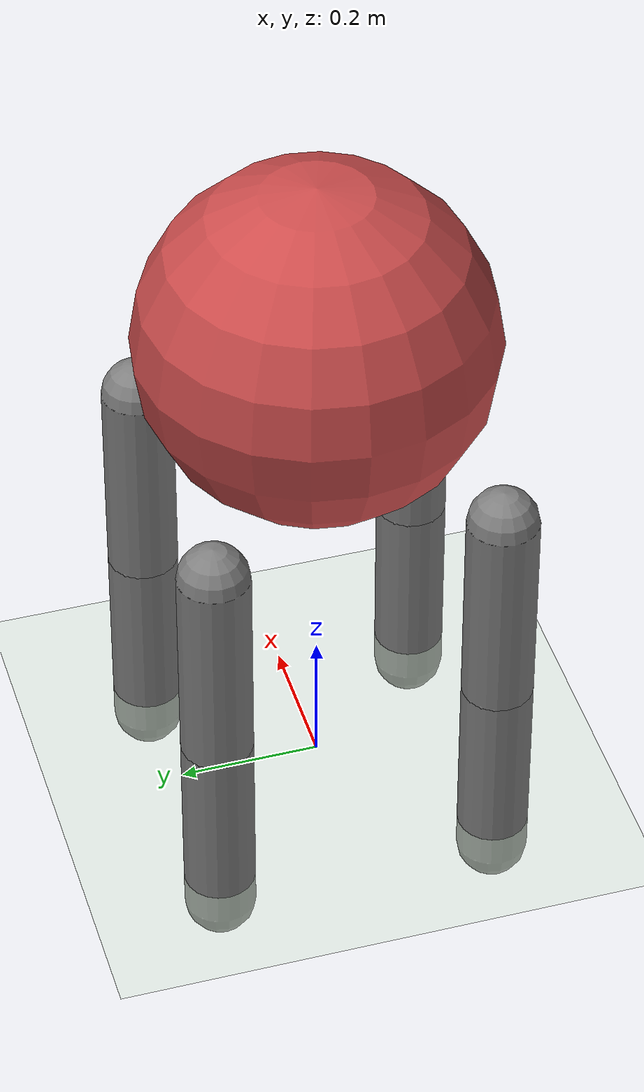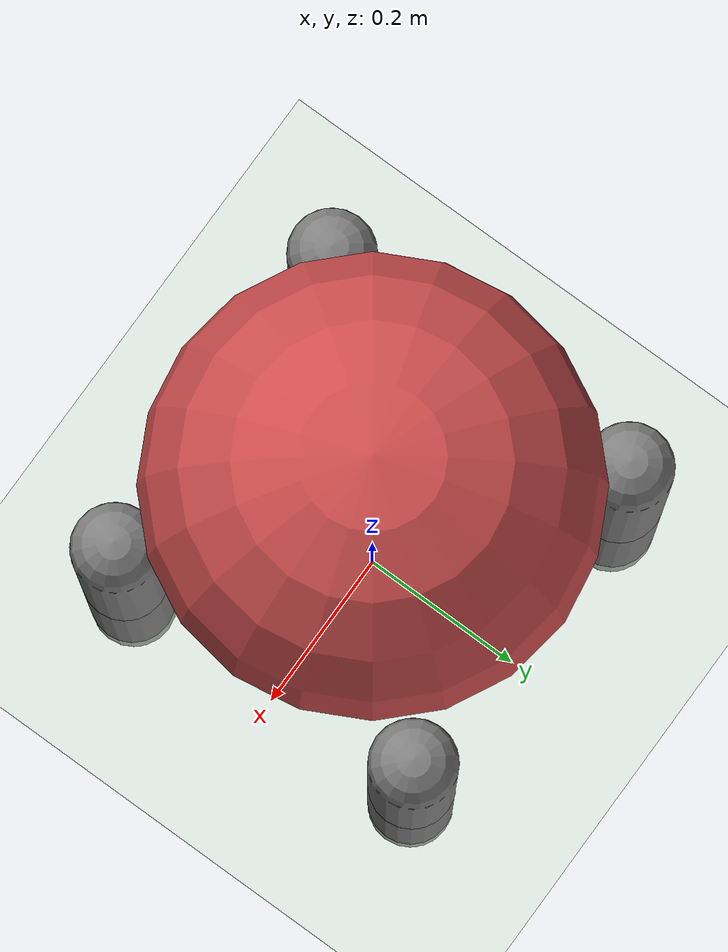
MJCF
<!--
Example MuJoCo XML model for an ant robot
Save this file and use the path to it in your simulation code
-->

<mujoco model="ant">
    <compiler angle="degree" coordinate="local"/>
    <option timestep="0.01" gravity="0 0 -9.81" iterations="50" integrator="RK4"/>

    <worldbody>
        <!-- Floor -->
        <geom name="floor" type="plane" size="40 40 0.1" rgba="0.8 0.9 0.8 1"/>

        <!-- Ant body -->
        <body name="torso" pos="0 0 0.75">
            <geom name="torso_geom" type="sphere" size="0.25" rgba="0.8 0.3 0.3 1"/>
            <joint name="root" type="free"/>

            <!-- Front left leg -->
            <body name="front_left_leg" pos="0.2 0.2 -0.2">
                <joint name="front_left_hip" type="hinge" axis="0 1 0" range="-30 30"/>
                <geom name="front_left_leg_geom" type="capsule" fromto="0 0 0 0 0 -0.3" size="0.05"/>

                <body name="front_left_ankle" pos="0 0 -0.3">
                    <joint name="front_left_knee" type="hinge" axis="1 0 0" range="-30 30"/>
                    <geom name="front_left_foot_geom" type="capsule" fromto="0 0 0 0 0 -0.3" size="0.05"/>
                </body>
            </body>

            <!-- Front right leg -->
            <body name="front_right_leg" pos="0.2 -0.2 -0.2">
                <joint name="front_right_hip" type="hinge" axis="0 1 0" range="-30 30"/>
                <geom name="front_right_leg_geom" type="capsule" fromto="0 0 0 0 0 -0.3" size="0.05"/>

                <body name="front_right_ankle" pos="0 0 -0.3">
                    <joint name="front_right_knee" type="hinge" axis="1 0 0" range="-30 30"/>
                    <geom name="front_right_foot_geom" type="capsule" fromto="0 0 0 0 0 -0.3" size="0.05"/>
                </body>
            </body>

            <!-- Back left leg -->
            <body name="back_left_leg" pos="-0.2 0.2 -0.2">
                <joint name="back_left_hip" type="hinge" axis="0 1 0" range="-30 30"/>
                <geom name="back_left_leg_geom" type="capsule" fromto="0 0 0 0 0 -0.3" size="0.05"/>

                <body name="back_left_ankle" pos="0 0 -0.3">
                    <joint name="back_left_knee" type="hinge" axis="1 0 0" range="-30 30"/>
                    <geom name="back_left_foot_geom" type="capsule" fromto="0 0 0 0 0 -0.3" size="0.05"/>
                </body>
            </body>

            <!-- Back right leg -->
            <body name="back_right_leg" pos="-0.2 -0.2 -0.2">
                <joint name="back_right_hip" type="hinge" axis="0 1 0" range="-30 30"/>
                <geom name="back_right_leg_geom" type="capsule" fromto="0 0 0 0 0 -0.3" size="0.05"/>

                <body name="back_right_ankle" pos="0 0 -0.3">
                    <joint name="back_right_knee" type="hinge" axis="1 0 0" range="-30 30"/>
                    <geom name="back_right_foot_geom" type="capsule" fromto="0 0 0 0 0 -0.3" size="0.05"/>
                </body>
            </body>
        </body>
    </worldbody>

    <actuator>
        <motor joint="front_left_hip" ctrlrange="-1 1" ctrllimited="true"/>
        <motor joint="front_left_knee" ctrlrange="-1 1" ctrllimited="true"/>
        <motor joint="front_right_hip" ctrlrange="-1 1" ctrllimited="true"/>
        <motor joint="front_right_knee" ctrlrange="-1 1" ctrllimited="true"/>
        <motor joint="back_left_hip" ctrlrange="-1 1" ctrllimited="true"/>
        <motor joint="back_left_knee" ctrlrange="-1 1" ctrllimited="true"/>
        <motor joint="back_right_hip" ctrlrange="-1 1" ctrllimited="true"/>
        <motor joint="back_right_knee" ctrlrange="-1 1" ctrllimited="true"/>
    </actuator>
</mujoco>
